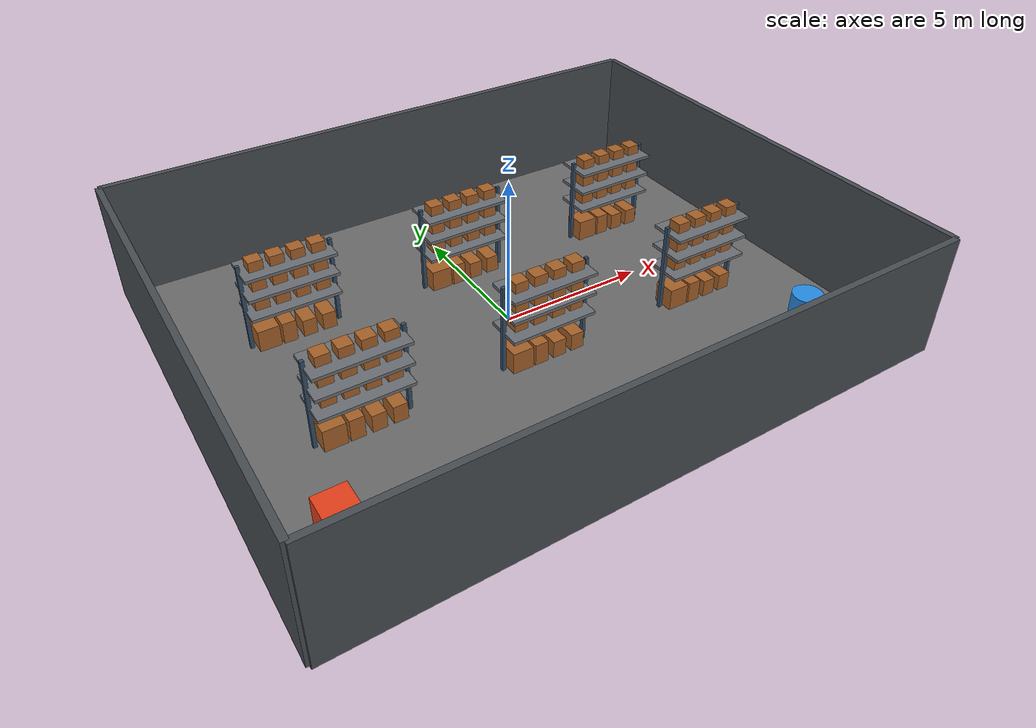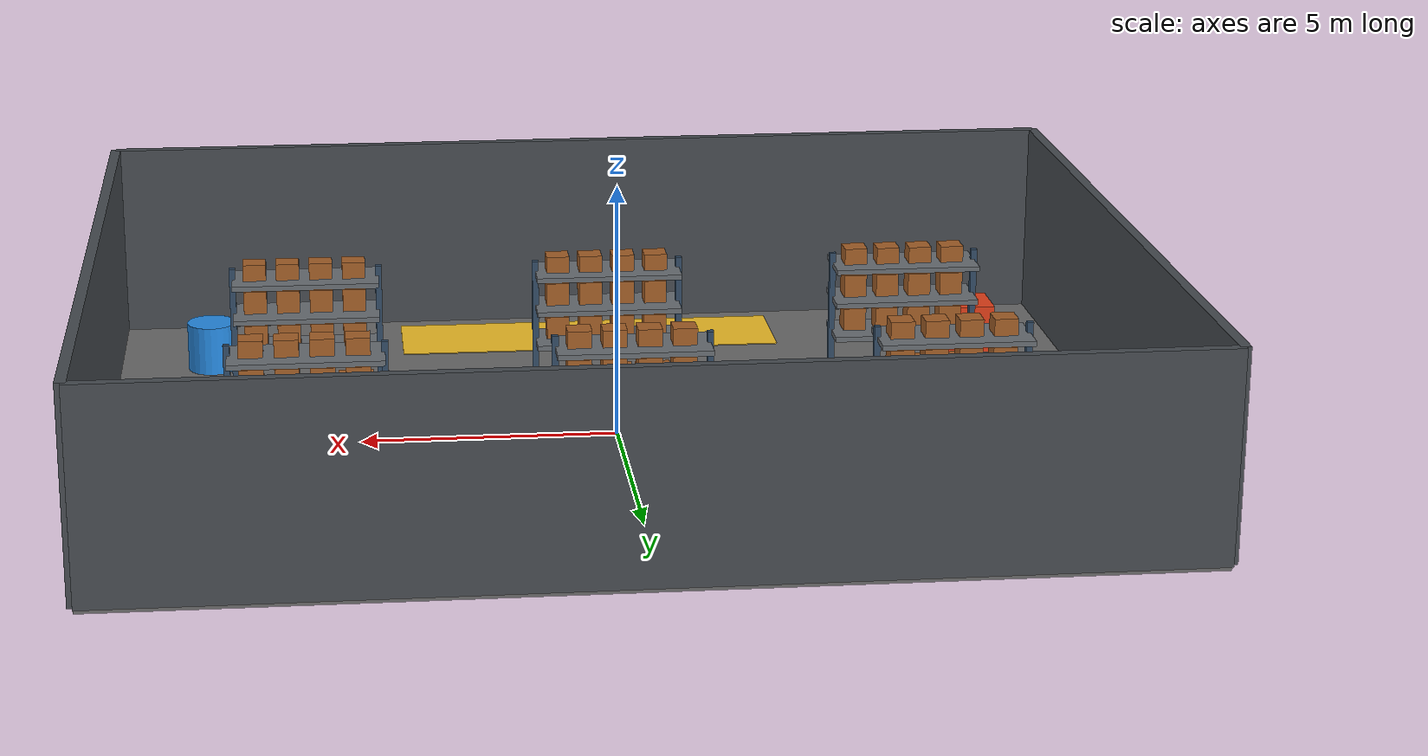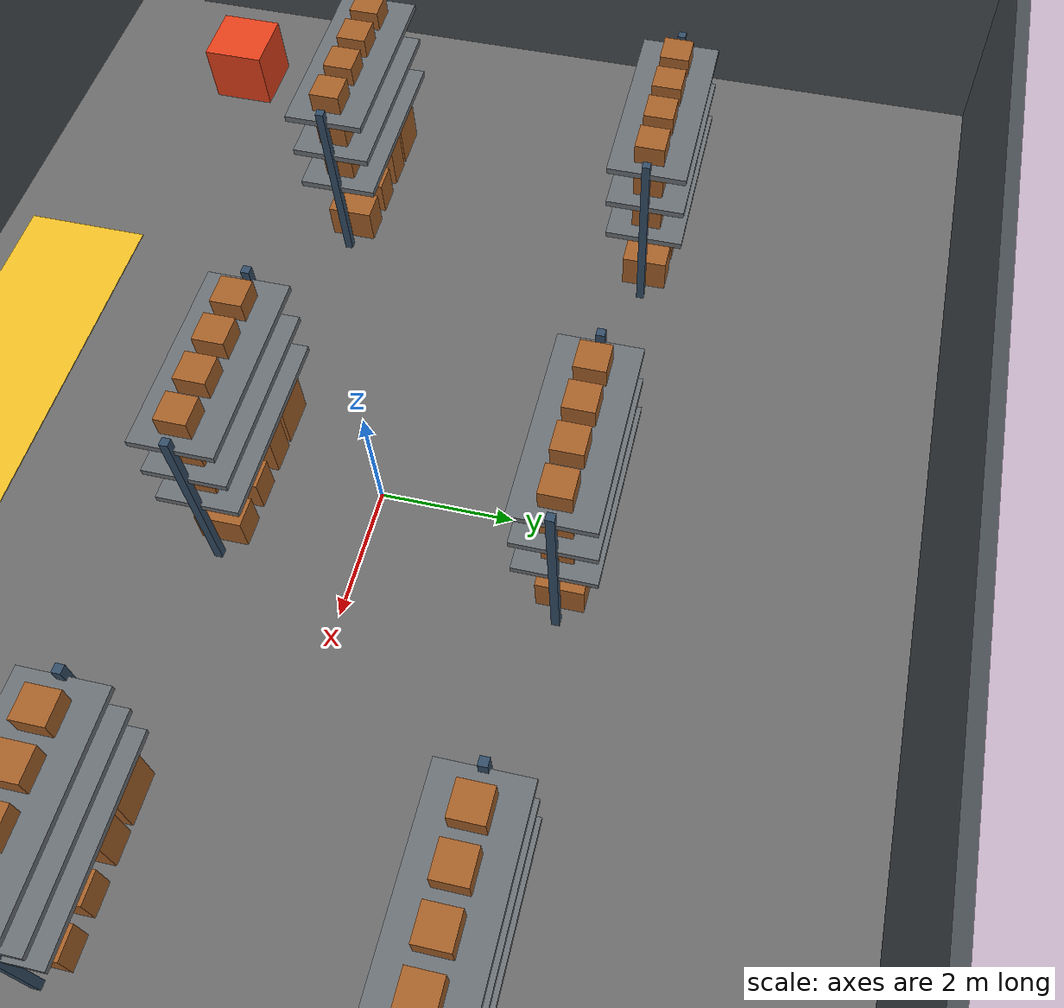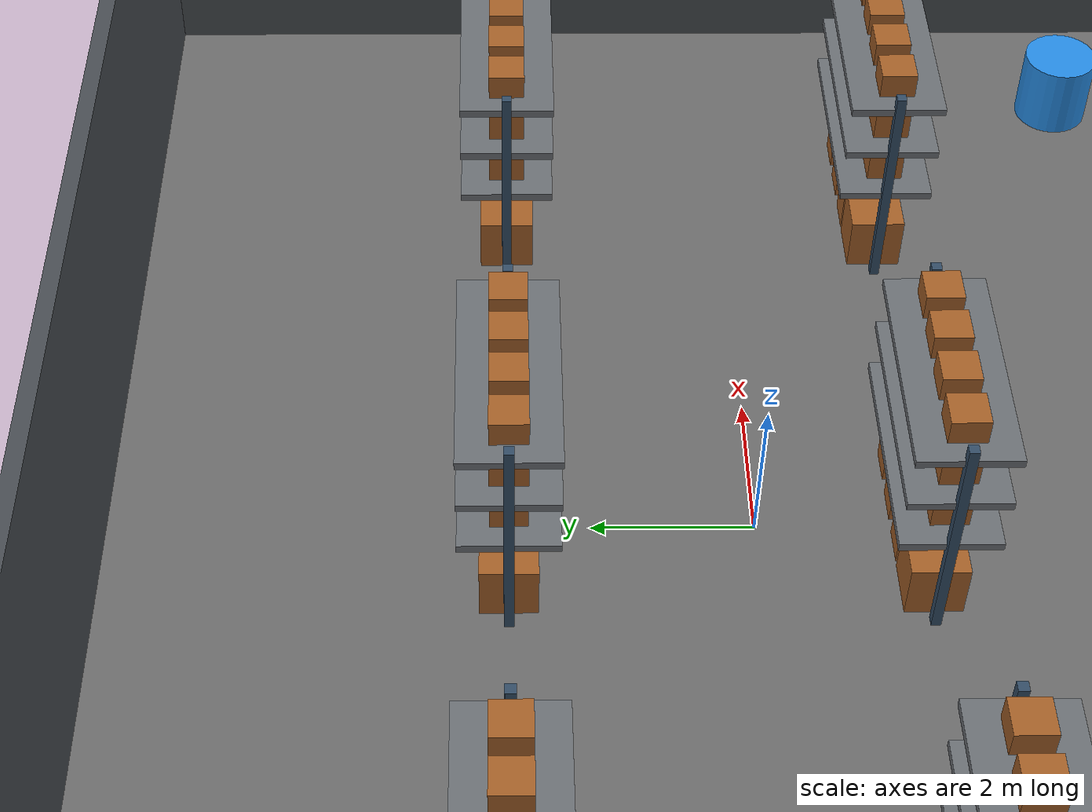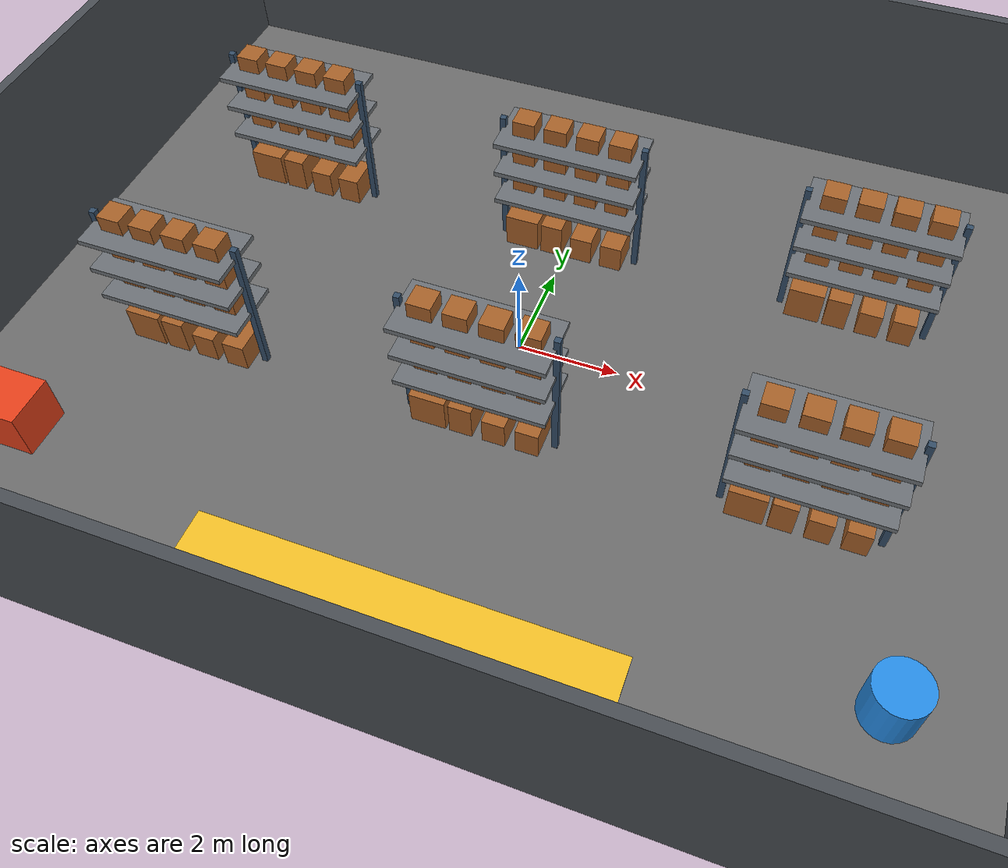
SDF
<?xml version="1.0" ?>
<sdf version="1.9">

  <world name="warehouse_world">

    <plugin filename="ignition-gazebo-physics-system"
            name="ignition::gazebo::systems::Physics"/>

    <plugin filename="ignition-gazebo-scene-broadcaster-system"
            name="ignition::gazebo::systems::SceneBroadcaster"/>

    <plugin filename="ignition-gazebo-user-commands-system"
            name="ignition::gazebo::systems::UserCommands"/>

    <plugin  filename='ignition-gazebo-sensors-system'
            name='ignition::gazebo::systems::Sensors'/>

    <!-- ================= LIGHTING ================= -->

    <light name="warehouse_light_1" type="directional">
      <pose>0 0 12 0 0 0</pose>
      <cast_shadows>true</cast_shadows>
      <diffuse>1 1 1 1</diffuse>
      <specular>0.3 0.3 0.3 1</specular>
      <direction>-0.3 0.2 -1</direction>
    </light>

    <light name="warehouse_light_2" type="point">
      <pose>0 0 5 0 0 0</pose>
      <diffuse>1 1 1 1</diffuse>
      <specular>0.2 0.2 0.2 1</specular>
      <attenuation>
        <range>30</range>
        <constant>0.5</constant>
        <linear>0.01</linear>
        <quadratic>0.001</quadratic>
      </attenuation>
    </light>

    <light name="warehouse_light_3" type="point">
      <pose>-7 -4 5 0 0 0</pose>
      <diffuse>1 1 1 1</diffuse>
      <attenuation>
        <range>25</range>
        <constant>0.5</constant>
        <linear>0.01</linear>
        <quadratic>0.001</quadratic>
      </attenuation>
    </light>

    <light name="warehouse_light_4" type="point">
      <pose>7 4 5 0 0 0</pose>
      <diffuse>1 1 1 1</diffuse>
      <attenuation>
        <range>25</range>
        <constant>0.5</constant>
        <linear>0.01</linear>
        <quadratic>0.001</quadratic>
      </attenuation>
    </light>

    <!-- ================= FLOOR ================= -->

    <model name="warehouse_floor">
      <static>true</static>
      <link name="floor">

        <collision name="collision">
          <pose>0 0 -0.05 0 0 0</pose>
          <geometry>
            <box>
              <size>20 16 0.1</size>
            </box>
          </geometry>
        </collision>

        <visual name="visual">
          <pose>0 0 -0.05 0 0 0</pose>
          <geometry>
            <box>
              <size>20 16 0.1</size>
            </box>
          </geometry>
         <material>
          <ambient>0.32 0.32 0.32 1</ambient>
          <diffuse>0.42 0.42 0.42 1</diffuse>
          <specular>0.08 0.08 0.08 1</specular>
        </material>
        </visual>

      </link>
    </model>

    <!-- ================= WALLS ================= -->

    <model name="wall_left">
      <static>true</static>
      <link name="link">
        <pose>-10 0 2 0 0 0</pose>

        <collision name="collision">
          <geometry><box><size>0.2 16 4</size></box></geometry>
        </collision>

        <visual name="visual">
          <geometry><box><size>0.2 16 4</size></box></geometry>
          <material>
            <ambient>0.20 0.22 0.24 1</ambient>
            <diffuse>0.28 0.30 0.32 1</diffuse>
            <specular>0.05 0.05 0.05 1</specular>
          </material>
        </visual>
      </link>
    </model>

    <model name="wall_right">
      <static>true</static>
      <link name="link">
        <pose>10 0 2 0 0 0</pose>

        <collision name="collision">
          <geometry><box><size>0.2 16 4</size></box></geometry>
        </collision>

        <visual name="visual">
          <geometry><box><size>0.2 16 4</size></box></geometry>
          <material>
            <ambient>0.20 0.22 0.24 1</ambient>
            <diffuse>0.28 0.30 0.32 1</diffuse>
            <specular>0.05 0.05 0.05 1</specular>
          </material>
        </visual>
      </link>
    </model>

    <model name="wall_front">
      <static>true</static>
      <link name="link">
        <pose>0 -8 2 0 0 0</pose>

        <collision name="collision">
          <geometry><box><size>20 0.2 4</size></box></geometry>
        </collision>

        <visual name="visual">
          <geometry><box><size>20 0.2 4</size></box></geometry>
          <material>
            <ambient>0.20 0.22 0.24 1</ambient>
            <diffuse>0.28 0.30 0.32 1</diffuse>
            <specular>0.05 0.05 0.05 1</specular>
          </material>
        </visual>
      </link>
    </model>

    <model name="wall_back">
      <static>true</static>
      <link name="link">
        <pose>0 8 2 0 0 0</pose>

        <collision name="collision">
          <geometry><box><size>20 0.2 4</size></box></geometry>
        </collision>

        <visual name="visual">
          <geometry><box><size>20 0.2 4</size></box></geometry>
          <material>
            <ambient>0.20 0.22 0.24 1</ambient>
            <diffuse>0.28 0.30 0.32 1</diffuse>
            <specular>0.05 0.05 0.05 1</specular>
          </material>
        </visual>
      </link>
    </model>

    <!-- ================= RACKS ================= -->

    <include>
      <uri>model://rack</uri>
      <name>rack_1</name>
      <pose>-6 3 0 0 0 0</pose>
    </include>

    <include>
      <uri>model://rack</uri>
      <name>rack_2</name>
      <pose>0 3 0 0 0 0</pose>
    </include>

    <include>
      <uri>model://rack</uri>
      <name>rack_3</name>
      <pose>6 3 0 0 0 0</pose>
    </include>

    <include>
      <uri>model://rack</uri>
      <name>rack_4</name>
      <pose>-6 -2 0 0 0 0</pose>
    </include>

    <include>
      <uri>model://rack</uri>
      <name>rack_5</name>
      <pose>0 -2 0 0 0 0</pose>
    </include>

    <include>
      <uri>model://rack</uri>
      <name>rack_6</name>
      <pose>6 -2 0 0 0 0</pose>
    </include>

    <!-- ================= LOADING AREA ================= -->

    <model name="loading_area">
      <static>true</static>
      <link name="link">
        <pose>0 -6.5 0.01 0 0 0</pose>

        <visual name="visual">
          <geometry>
            <box><size>8 2 0.02</size></box>
          </geometry>
          <material>
            <ambient>0.9 0.65 0.1 1</ambient>
            <diffuse>0.95 0.75 0.15 1</diffuse>
          </material>
        </visual>
      </link>
    </model>

    <!-- ================= OBSTACLES ================= -->

    <model name="obstacle_1">
      <static>true</static>
      <link name="link">
        <pose>-8 -5 0.5 0 0 0</pose>

        <collision name="collision">
          <geometry><box><size>1 1 1</size></box></geometry>
        </collision>

        <visual name="visual">
          <geometry><box><size>1 1 1</size></box></geometry>
          <material>
            <ambient>0.8 0.2 0.1 1</ambient>
            <diffuse>0.9 0.25 0.1 1</diffuse>
          </material>
        </visual>
      </link>
    </model>

    <model name="obstacle_2">
      <static>true</static>
      <link name="link">
        <pose>8 -5 0.5 0 0 0</pose>

        <collision name="collision">
          <geometry>
            <cylinder>
              <radius>0.5</radius>
              <length>1</length>
            </cylinder>
          </geometry>
        </collision>

        <visual name="visual">
          <geometry>
            <cylinder>
              <radius>0.5</radius>
              <length>1</length>
            </cylinder>
          </geometry>
          <material>
            <ambient>0.1 0.45 0.8 1</ambient>
            <diffuse>0.15 0.55 0.9 1</diffuse>
          </material>
        </visual>
      </link>
    </model>

  </world>
</sdf>

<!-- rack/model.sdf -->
<sdf version="1.9">
  <model name="warehouse_rack">
    <static>true</static>

    <!-- ================= RACK POSTS ================= -->

    <link name="left_post">
      <pose>-1.44 0 1.5 0 0 0</pose>

      <visual name="visual">
        <geometry>
          <box><size>0.12 0.12 3.0</size></box>
        </geometry>
        <material>
          <ambient>0.12 0.18 0.24 1</ambient>
          <diffuse>0.20 0.30 0.40 1</diffuse>
          <specular>0.25 0.25 0.25 1</specular>
        </material>
      </visual>

      <collision name="collision">
        <geometry>
          <box><size>0.12 0.12 3.0</size></box>
        </geometry>
      </collision>
    </link>

    <link name="right_post">
      <pose>1.44 0 1.5 0 0 0</pose>

      <visual name="visual">
        <geometry>
          <box><size>0.12 0.12 3.0</size></box>
        </geometry>
        <material>
          <ambient>0.12 0.18 0.24 1</ambient>
          <diffuse>0.20 0.30 0.40 1</diffuse>
          <specular>0.25 0.25 0.25 1</specular>
        </material>
      </visual>

      <collision name="collision">
        <geometry>
          <box><size>0.12 0.12 3.0</size></box>
        </geometry>
      </collision>
    </link>

    <!-- ================= SHELF LEVELS ================= -->

    <link name="shelf_2">
      <pose>0 0 1.35 0 0 0</pose>
      <visual name="visual">
        <geometry>
          <box><size>2.88 1.2 0.10</size></box>
        </geometry>
        <material>
          <ambient>0.28 0.30 0.32 1</ambient>
          <diffuse>0.42 0.44 0.46 1</diffuse>
          <specular>0.20 0.20 0.20 1</specular>
        </material>
      </visual>
      <collision name="collision">
        <geometry>
          <box><size>2.88 1.2 0.10</size></box>
        </geometry>
      </collision>
    </link>

    <link name="shelf_3">
      <pose>0 0 2.05 0 0 0</pose>
      <visual name="visual">
        <geometry>
          <box><size>2.88 1.2 0.10</size></box>
        </geometry>
        <material>
          <ambient>0.28 0.30 0.32 1</ambient>
          <diffuse>0.42 0.44 0.46 1</diffuse>
          <specular>0.20 0.20 0.20 1</specular>
        </material>
      </visual>
      <collision name="collision">
        <geometry>
          <box><size>2.88 1.2 0.10</size></box>
        </geometry>
      </collision>
    </link>

    <link name="shelf_4">
      <pose>0 0 2.75 0 0 0</pose>
      <visual name="visual">
        <geometry>
          <box><size>2.88 1.2 0.10</size></box>
        </geometry>
        <material>
          <ambient>0.28 0.30 0.32 1</ambient>
          <diffuse>0.42 0.44 0.46 1</diffuse>
          <specular>0.20 0.20 0.20 1</specular>
        </material>
      </visual>
      <collision name="collision">
        <geometry>
          <box><size>2.88 1.2 0.10</size></box>
        </geometry>
      </collision>
    </link>

    <!-- ================= BOXES LEVEL 1 ================= -->

    <link name="box_1_1">
      <pose>-0.95 0 0.225 0 0 0</pose>
      <visual name="visual">
        <geometry><box><size>0.70 0.70 1.0</size></box></geometry>
        <material>
          <ambient>0.45 0.25 0.10 1</ambient>
          <diffuse>0.65 0.38 0.16 1</diffuse>
          <specular>0.05 0.05 0.05 1</specular>
        </material>
      </visual>
      <collision name="collision">
        <geometry><box><size>0.70 0.70 1.0</size></box></geometry>
      </collision>
    </link>

    <link name="box_1_2">
      <pose>-0.30 0 0.225 0 0 0</pose>
      <visual name="visual">
        <geometry><box><size>0.45 0.70 1.0</size></box></geometry>
        <material>
          <ambient>0.45 0.25 0.10 1</ambient>
          <diffuse>0.65 0.38 0.16 1</diffuse>
          <specular>0.05 0.05 0.05 1</specular>
        </material>
      </visual>
      <collision name="collision">
        <geometry><box><size>0.45 0.70 1.0</size></box></geometry>
      </collision>
    </link>

    <link name="box_1_3">
      <pose>0.35 0 0.225 0 0 0</pose>
      <visual name="visual">
        <geometry><box><size>0.45 0.70 0.70</size></box></geometry>
        <material>
          <ambient>0.45 0.25 0.10 1</ambient>
          <diffuse>0.65 0.38 0.16 1</diffuse>
          <specular>0.05 0.05 0.05 1</specular>
        </material>
      </visual>
      <collision name="collision">
        <geometry><box><size>0.45 0.70 0.70</size></box></geometry>
      </collision>
    </link>

    <link name="box_1_4">
      <pose>1.00 0 0.225 0 0 0</pose>
      <visual name="visual">
        <geometry><box><size>0.45 0.70 0.70</size></box></geometry>
        <material>
          <ambient>0.45 0.25 0.10 1</ambient>
          <diffuse>0.65 0.38 0.16 1</diffuse>
          <specular>0.05 0.05 0.05 1</specular>
        </material>
      </visual>
      <collision name="collision">
        <geometry><box><size>0.45 0.70 0.70</size></box></geometry>
      </collision>
    </link>

    <!-- ================= BOXES LEVEL 2 ================= -->

    <link name="box_2_1">
      <pose>-0.95 0 1.65 0 0 0</pose>
      <visual name="visual">
        <geometry><box><size>0.45 0.45 0.45</size></box></geometry>
        <material>
          <ambient>0.45 0.25 0.10 1</ambient>
          <diffuse>0.65 0.38 0.16 1</diffuse>
          <specular>0.05 0.05 0.05 1</specular>
        </material>
      </visual>
      <collision name="collision">
        <geometry><box><size>0.45 0.45 0.45</size></box></geometry>
      </collision>
    </link>

    <link name="box_2_2">
      <pose>-0.30 0 1.65 0 0 0</pose>
      <visual name="visual">
        <geometry><box><size>0.45 0.45 0.45</size></box></geometry>
        <material>
          <ambient>0.45 0.25 0.10 1</ambient>
          <diffuse>0.65 0.38 0.16 1</diffuse>
          <specular>0.05 0.05 0.05 1</specular>
        </material>
      </visual>
      <collision name="collision">
        <geometry><box><size>0.45 0.45 0.45</size></box></geometry>
      </collision>
    </link>

    <link name="box_2_3">
      <pose>0.35 0 1.65 0 0 0</pose>
      <visual name="visual">
        <geometry><box><size>0.45 0.45 0.45</size></box></geometry>
        <material>
          <ambient>0.45 0.25 0.10 1</ambient>
          <diffuse>0.65 0.38 0.16 1</diffuse>
          <specular>0.05 0.05 0.05 1</specular>
        </material>
      </visual>
      <collision name="collision">
        <geometry><box><size>0.45 0.45 0.45</size></box></geometry>
      </collision>
    </link>

    <link name="box_2_4">
      <pose>1.00 0 1.65 0 0 0</pose>
      <visual name="visual">
        <geometry><box><size>0.45 0.45 0.45</size></box></geometry>
        <material>
          <ambient>0.45 0.25 0.10 1</ambient>
          <diffuse>0.65 0.38 0.16 1</diffuse>
          <specular>0.05 0.05 0.05 1</specular>
        </material>
      </visual>
      <collision name="collision">
        <geometry><box><size>0.45 0.45 0.45</size></box></geometry>
      </collision>
    </link>

    <!-- ================= BOXES LEVEL 3 ================= -->

    <link name="box_3_1">
      <pose>-0.95 0 2.35 0 0 0</pose>
      <visual name="visual">
        <geometry><box><size>0.45 0.45 0.45</size></box></geometry>
        <material>
          <ambient>0.45 0.25 0.10 1</ambient>
          <diffuse>0.65 0.38 0.16 1</diffuse>
          <specular>0.05 0.05 0.05 1</specular>
        </material>
      </visual>
      <collision name="collision">
        <geometry><box><size>0.45 0.45 0.45</size></box></geometry>
      </collision>
    </link>

    <link name="box_3_2">
      <pose>-0.30 0 2.35 0 0 0</pose>
      <visual name="visual">
        <geometry><box><size>0.45 0.45 0.45</size></box></geometry>
        <material>
          <ambient>0.45 0.25 0.10 1</ambient>
          <diffuse>0.65 0.38 0.16 1</diffuse>
          <specular>0.05 0.05 0.05 1</specular>
        </material>
      </visual>
      <collision name="collision">
        <geometry><box><size>0.45 0.45 0.45</size></box></geometry>
      </collision>
    </link>

    <link name="box_3_3">
      <pose>0.35 0 2.35 0 0 0</pose>
      <visual name="visual">
        <geometry><box><size>0.45 0.45 0.45</size></box></geometry>
        <material>
          <ambient>0.45 0.25 0.10 1</ambient>
          <diffuse>0.65 0.38 0.16 1</diffuse>
          <specular>0.05 0.05 0.05 1</specular>
        </material>
      </visual>
      <collision name="collision">
        <geometry><box><size>0.45 0.45 0.45</size></box></geometry>
      </collision>
    </link>

    <link name="box_3_4">
      <pose>1.00 0 2.35 0 0 0</pose>
      <visual name="visual">
        <geometry><box><size>0.45 0.45 0.45</size></box></geometry>
        <material>
          <ambient>0.45 0.25 0.10 1</ambient>
          <diffuse>0.65 0.38 0.16 1</diffuse>
          <specular>0.05 0.05 0.05 1</specular>
        </material>
      </visual>
      <collision name="collision">
        <geometry><box><size>0.45 0.45 0.45</size></box></geometry>
      </collision>
    </link>

    <!-- ================= BOXES LEVEL 4 ================= -->

    <link name="box_4_1">
      <pose>-0.95 0 2.95 0 0 0</pose>
      <visual name="visual">
        <geometry><box><size>0.45 0.45 0.35</size></box></geometry>
        <material>
          <ambient>0.45 0.25 0.10 1</ambient>
          <diffuse>0.65 0.38 0.16 1</diffuse>
          <specular>0.05 0.05 0.05 1</specular>
        </material>
      </visual>
      <collision name="collision">
        <geometry><box><size>0.45 0.45 0.35</size></box></geometry>
      </collision>
    </link>

    <link name="box_4_2">
      <pose>-0.30 0 2.95 0 0 0</pose>
      <visual name="visual">
        <geometry><box><size>0.45 0.45 0.35</size></box></geometry>
        <material>
          <ambient>0.45 0.25 0.10 1</ambient>
          <diffuse>0.65 0.38 0.16 1</diffuse>
          <specular>0.05 0.05 0.05 1</specular>
        </material>
      </visual>
      <collision name="collision">
        <geometry><box><size>0.45 0.45 0.35</size></box></geometry>
      </collision>
    </link>

    <link name="box_4_3">
      <pose>0.35 0 2.95 0 0 0</pose>
      <visual name="visual">
        <geometry><box><size>0.45 0.45 0.35</size></box></geometry>
        <material>
          <ambient>0.45 0.25 0.10 1</ambient>
          <diffuse>0.65 0.38 0.16 1</diffuse>
          <specular>0.05 0.05 0.05 1</specular>
        </material>
      </visual>
      <collision name="collision">
        <geometry><box><size>0.45 0.45 0.35</size></box></geometry>
      </collision>
    </link>

    <link name="box_4_4">
      <pose>1.00 0 2.95 0 0 0</pose>
      <visual name="visual">
        <geometry><box><size>0.45 0.45 0.35</size></box></geometry>
        <material>
          <ambient>0.45 0.25 0.10 1</ambient>
          <diffuse>0.65 0.38 0.16 1</diffuse>
          <specular>0.05 0.05 0.05 1</specular>
        </material>
      </visual>
      <collision name="collision">
        <geometry><box><size>0.45 0.45 0.35</size></box></geometry>
      </collision>
    </link>

  </model>
</sdf>
